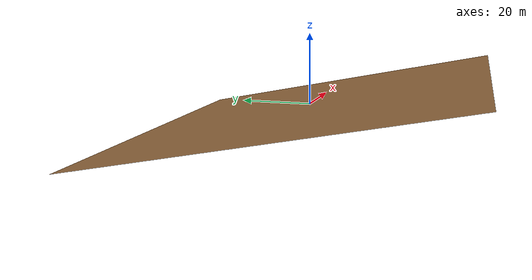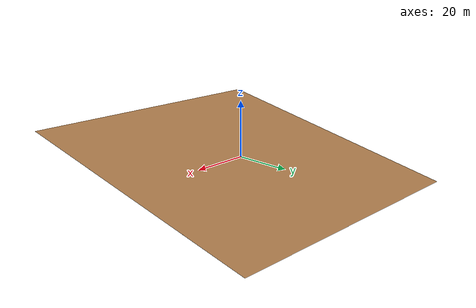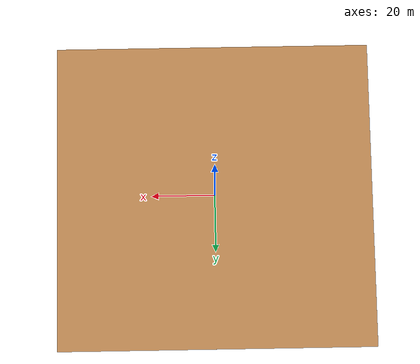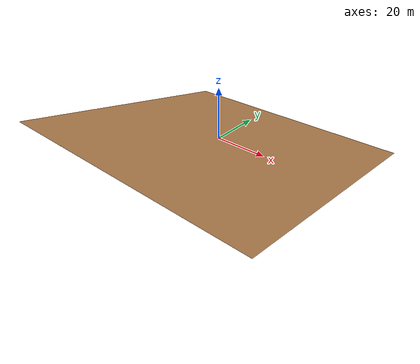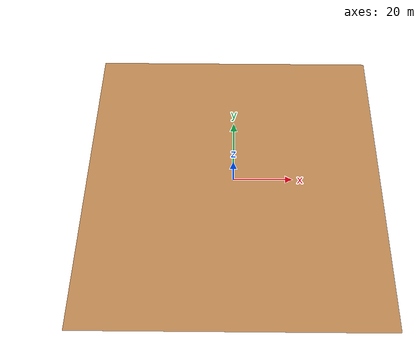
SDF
<?xml version="1.0" ?>
<sdf version="1.4">
    <model name="slope">
        <static>true</static>
        <link name="link">
			<pose>0 0 0 -0.2 0 0</pose>
            <collision name="collision">
                <geometry>
                    <box>
                        <size>100 100 0.001</size>
                    </box>
                </geometry>
                <surface>
                    <friction>
                        <ode>
                            <mu>10</mu>
                            <mu2>10</mu2>
                            <slip1>0.001</slip1>
                            <slip2>0.001</slip2>
                        </ode>
                    </friction>
	                <contact>
						<ode>
							<soft_cfm>0.005</soft_cfm>
						</ode>
	                </contact>
                </surface>
            </collision>
            <visual name="visual">
                <geometry>
                    <box>
                        <size>100 100 0.001</size>
                    </box>
                </geometry>
                <material>
                    <script>
                        <uri>file://media/materials/scripts/gazebo.material</uri>
                        <name>Gazebo/Wood</name>
                    </script>
                </material>
            </visual>
		</link>
    </model>
</sdf>
